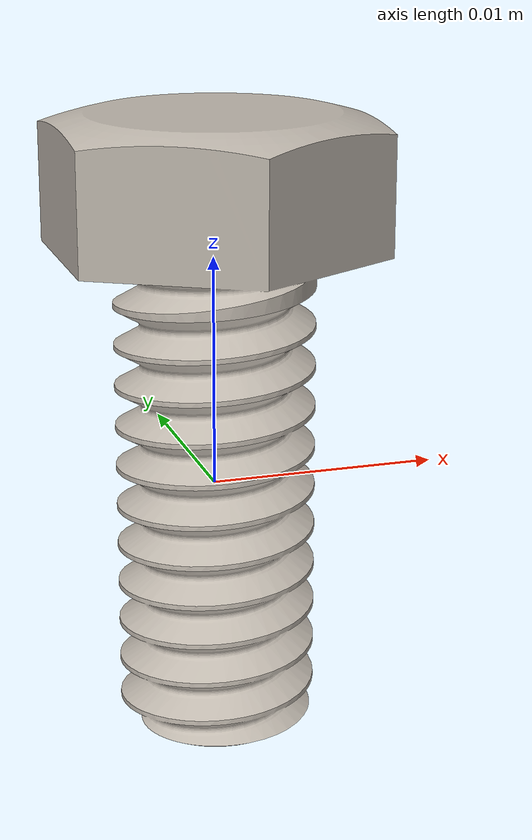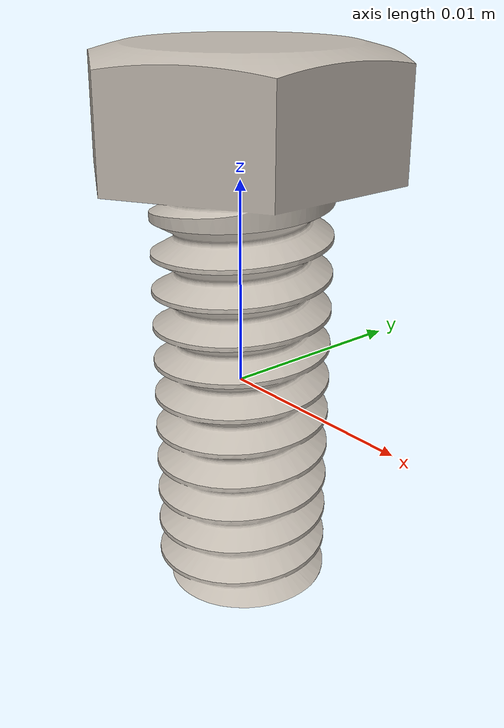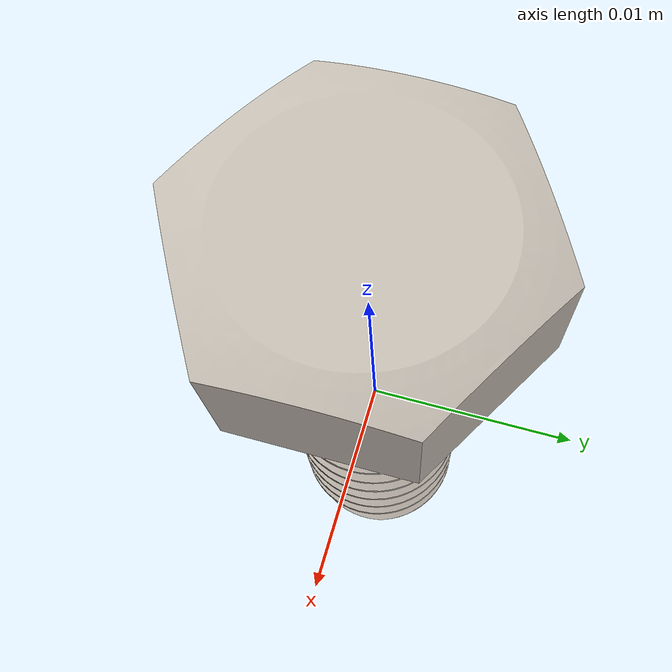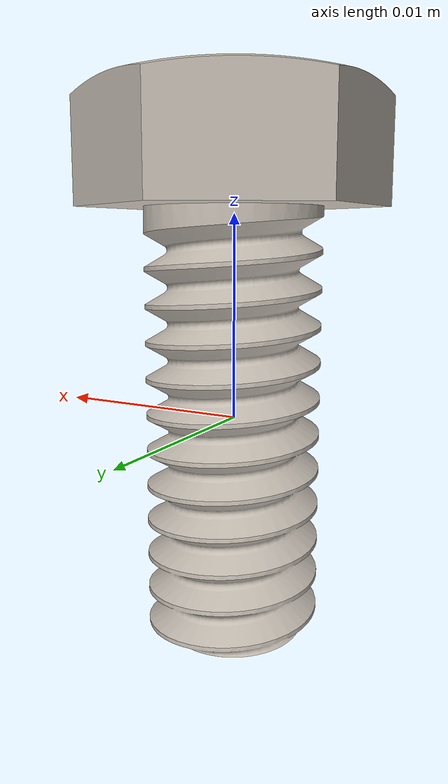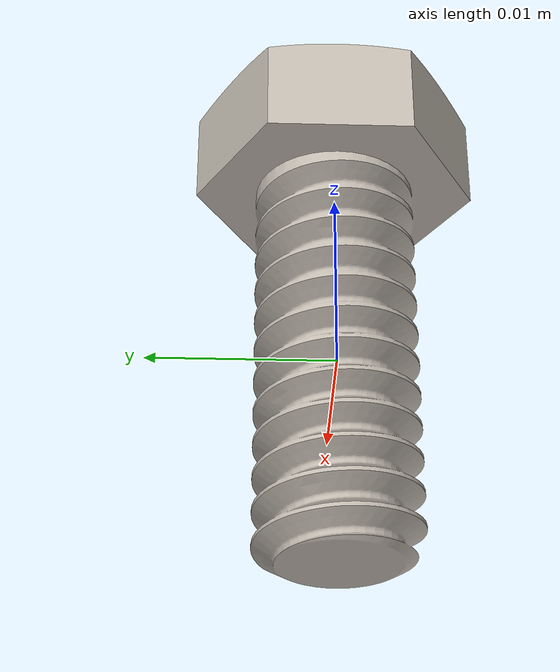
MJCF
<?xml version="1.0" encoding="UTF-8"?>
<mujoco model="hexhead_screw">
  <asset>
    <texture type="2d" file="textures/metal.png" name="metal_tex"/>
    <material name="metal_mat" texture="metal_tex" specular="0.9" shininess="0.7" reflectance="0.25"/>
    <mesh name="hexhead_screw_mesh" file="meshes/hexhead_screw.stl"/>
  </asset>
  <worldbody>
    <body name="hexhead_screw" pos="0 0 0">
      <freejoint name="hexhead_screw_joint"/>
      <geom name="hexhead_screw_visual" type="mesh" mesh="hexhead_screw_mesh"
            material="metal_mat" group="1" contype="0" conaffinity="0"/>
      <geom name="hexhead_screw_col" type="cylinder" group="3"
            size="0.00764731 0.0136032"
            pos="0 0 0.00244341" quat="1 0 0 0"
            mass="0.001" friction="1.0 0.05 0.001" condim="4"/>
    </body>
  </worldbody>
</mujoco>
